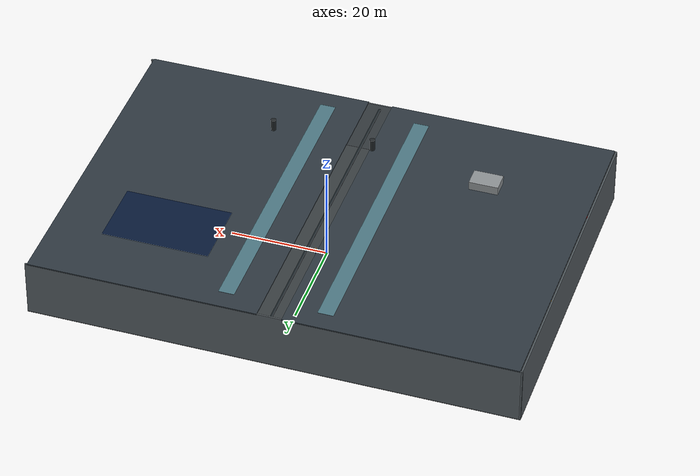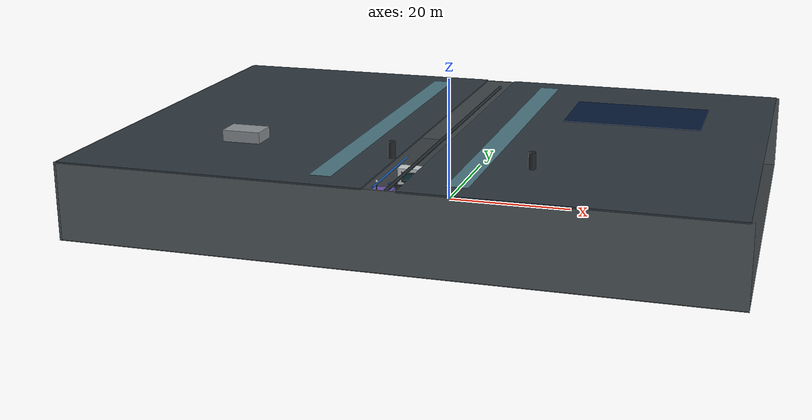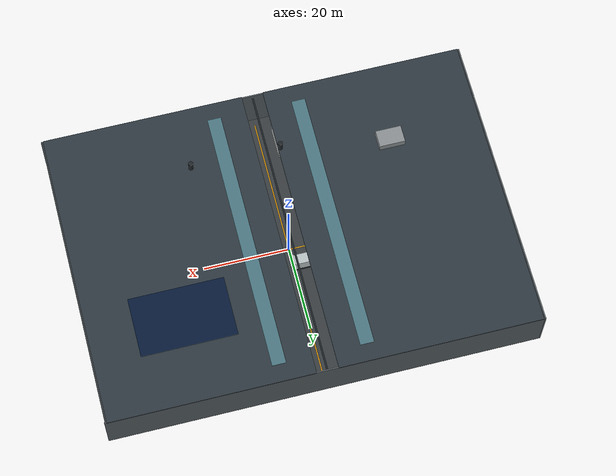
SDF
<sdf version="1.9">
 <world name="factory_floor">
  <model name="factory_floor">
   <static>true</static>
   <link name="floor">
    <collision name="collision"><geometry><box><size>100 70 0.1</size></box></geometry></collision>
    <visual name="visual">
     <geometry><box><size>100 70 0.1</size></box></geometry>
     <material><diffuse>0.22 0.24 0.25 1</diffuse></material>
    </visual>
    <visual name="main_aisle_x">
     <pose>0 0 .06 0 0 0</pose>
     <geometry><box><size>96 .26 .02</size></box></geometry>
     <material><diffuse>.95 .65 .04 1</diffuse><emissive>.15 .1 0 1</emissive></material>
    </visual>
    <visual name="main_aisle_y">
     <pose>0 0 .06 0 0 0</pose>
     <geometry><box><size>.26 66 .02</size></box></geometry>
     <material><diffuse>.95 .65 .04 1</diffuse></material>
    </visual>
    <visual name="logistics_lane">
     <pose>-30 0 .06 0 0 0</pose>
     <geometry><box><size>4 64 .02</size></box></geometry>
     <material><diffuse>.85 .85 .77 1</diffuse></material>
    </visual>
   </link>
  </model>
  <model name="hall_walls">
   <static>true</static>
   <link name="walls">
    <visual name="north">
     <pose>0 34.8 6 0 0 0</pose>
     <geometry><box><size>100 .3 12</size></box></geometry>
     <material><diffuse>.33 .36 .38 1</diffuse></material>
    </visual>
    <visual name="west">
     <pose>-49.8 0 6 0 0 0</pose>
     <geometry><box><size>.3 70 12</size></box></geometry>
     <material><diffuse>.33 .36 .38 1</diffuse></material>
    </visual>
    <visual name="south">
     <pose>0 -34.8 6 0 0 0</pose>
     <geometry><box><size>100 .3 12</size></box></geometry>
     <material><diffuse>.33 .36 .38 1</diffuse></material>
    </visual>
   </link>
  </model>
  <model name="roof_trusses">
   <static>true</static>
   <link name="trusses">
    <visual name="beam1">
     <pose>-36 0 11 0 0 0</pose>
     <geometry><box><size>.4 69 .4</size></box></geometry>
     <material><diffuse>.1 .13 .15 1</diffuse></material>
    </visual>
    <visual name="beam2">
     <pose>-18 0 11 0 0 0</pose>
     <geometry><box><size>.4 69 .4</size></box></geometry>
     <material><diffuse>.1 .13 .15 1</diffuse></material>
    </visual>
    <visual name="beam3">
     <pose>0 0 11 0 0 0</pose>
     <geometry><box><size>.4 69 .4</size></box></geometry>
     <material><diffuse>.1 .13 .15 1</diffuse></material>
    </visual>
    <visual name="beam4">
     <pose>18 0 11 0 0 0</pose>
     <geometry><box><size>.4 69 .4</size></box></geometry>
     <material><diffuse>.1 .13 .15 1</diffuse></material>
    </visual>
    <visual name="beam5">
     <pose>36 0 11 0 0 0</pose>
     <geometry><box><size>.4 69 .4</size></box></geometry>
     <material><diffuse>.1 .13 .15 1</diffuse></material>
    </visual>
   </link>
  </model>
  <model name="factory_roof">
   <static>true</static>
   <link name="roof">
    <visual name="roof_west">
     <pose>-26 0 12 0 0 0</pose>
     <geometry><box><size>47 70 .25</size></box></geometry>
     <material><diffuse>.18 .22 .25 1</diffuse></material>
    </visual>
    <visual name="roof_east">
     <pose>26 0 12 0 0 0</pose>
     <geometry><box><size>47 70 .25</size></box></geometry>
     <material><diffuse>.18 .22 .25 1</diffuse></material>
    </visual>
    <visual name="skylight1">
     <pose>-10 0 12.16 0 0 0</pose>
     <geometry><box><size>3.2 62 .07</size></box></geometry>
     <material><diffuse>.45 .72 .78 .55</diffuse><emissive>.06 .1 .12 1</emissive></material>
    </visual>
    <visual name="skylight2">
     <pose>10 0 12.16 0 0 0</pose>
     <geometry><box><size>3.2 62 .07</size></box></geometry>
     <material><diffuse>.45 .72 .78 .55</diffuse><emissive>.06 .1 .12 1</emissive></material>
    </visual>
    <visual name="solar_array">
     <pose>28 15 12.25 0 0 0</pose>
     <geometry><box><size>22 14 .08</size></box></geometry>
     <material><diffuse>.03 .1 .22 1</diffuse><emissive>.01 .03 .06 1</emissive></material>
    </visual>
    <visual name="roof_hvac">
     <pose>-28 -16 13 0 0 0</pose>
     <geometry><box><size>6 4 1.8</size></box></geometry>
     <material><diffuse>.55 .57 .58 1</diffuse></material>
    </visual>
    <visual name="exhaust_a">
     <pose>-3 -20 13.5 0 0 0</pose>
     <geometry><cylinder><radius>.55</radius><length>2.5</length></cylinder></geometry>
     <material><diffuse>.13 .15 .16 1</diffuse></material>
    </visual>
    <visual name="exhaust_b">
     <pose>18 -20 13.5 0 0 0</pose>
     <geometry><cylinder><radius>.55</radius><length>2.5</length></cylinder></geometry>
     <material><diffuse>.13 .15 .16 1</diffuse></material>
    </visual>
   </link>
  </model>
  <model name="utility_pipes">
   <static>true</static>
   <link name="pipes">
    <visual name="blue_pipe">
     <pose>-10 0 3.8 1.5708 0 0</pose>
     <geometry><cylinder><radius>.16</radius><length>18</length></cylinder></geometry>
     <material><diffuse>.08 .35 .7 1</diffuse></material>
    </visual>
    <visual name="red_pipe">
     <pose>-11 0 4.35 1.5708 0 0</pose>
     <geometry><cylinder><radius>.13</radius><length>18</length></cylinder></geometry>
     <material><diffuse>.8 .12 .08 1</diffuse></material>
    </visual>
   </link>
  </model>
  <model name="warning_beacon">
   <static>true</static>
   <pose>-10 -7 2.5 0 0 0</pose>
   <link name="beacon">
    <visual name="post">
     <geometry><cylinder><radius>.08</radius><length>3.5</length></cylinder></geometry>
     <material><diffuse>.2 .2 .2 1</diffuse></material>
    </visual>
    <visual name="light">
     <pose>0 0 1.7 0 0 0</pose>
     <geometry><sphere><radius>.24</radius></sphere></geometry>
     <material><emissive>1 .05 .01 1</emissive></material>
    </visual>
   </link>
  </model>
  <model name="raw_material_warehouse">
   <static>true</static>
   <pose>-35 18 0 0 0 0</pose>
   <link name="racks">
    <visual name="rack_a">
     <pose>0 -8 3 0 0 0</pose>
     <geometry><box><size>4 .6 6</size></box></geometry>
     <material><diffuse>.1 .32 .64 1</diffuse></material>
    </visual>
    <visual name="rack_b">
     <pose>0 0 3 0 0 0</pose>
     <geometry><box><size>4 .6 6</size></box></geometry>
     <material><diffuse>.1 .32 .64 1</diffuse></material>
    </visual>
    <visual name="rack_c">
     <pose>0 8 3 0 0 0</pose>
     <geometry><box><size>4 .6 6</size></box></geometry>
     <material><diffuse>.1 .32 .64 1</diffuse></material>
    </visual>
    <visual name="rack_d">
     <pose>8 -8 3 0 0 0</pose>
     <geometry><box><size>4 .6 6</size></box></geometry>
     <material><diffuse>.1 .32 .64 1</diffuse></material>
    </visual>
    <visual name="rack_e">
     <pose>8 0 3 0 0 0</pose>
     <geometry><box><size>4 .6 6</size></box></geometry>
     <material><diffuse>.1 .32 .64 1</diffuse></material>
    </visual>
    <visual name="rack_f">
     <pose>8 8 3 0 0 0</pose>
     <geometry><box><size>4 .6 6</size></box></geometry>
     <material><diffuse>.1 .32 .64 1</diffuse></material>
    </visual>
    <visual name="pallet_a">
     <pose>3 -4 .25 0 0 0</pose>
     <geometry><box><size>1.2 1 .5</size></box></geometry>
     <material><diffuse>.47 .25 .08 1</diffuse></material>
    </visual>
    <visual name="pallet_b">
     <pose>3 4 .25 0 0 0</pose>
     <geometry><box><size>1.2 1 .5</size></box></geometry>
     <material><diffuse>.47 .25 .08 1</diffuse></material>
    </visual>
   </link>
  </model>
  <model name="electrical_panel_assembly">
   <static>true</static>
   <pose>-35 -19 0 0 0 0</pose>
   <link name="assembly">
    <visual name="bench1">
     <pose>0 0 1 0 0 0</pose>
     <geometry><box><size>7 2 2</size></box></geometry>
     <material><diffuse>.16 .18 .19 1</diffuse></material>
    </visual>
    <visual name="bench2">
     <pose>10 0 1 0 0 0</pose>
     <geometry><box><size>7 2 2</size></box></geometry>
     <material><diffuse>.16 .18 .19 1</diffuse></material>
    </visual>
    <visual name="panel1">
     <pose>-2 0 2.8 0 0 0</pose>
     <geometry><box><size>2.2 .3 2.8</size></box></geometry>
     <material><diffuse>.86 .86 .81 1</diffuse></material>
    </visual>
    <visual name="panel2">
     <pose>2 0 2.8 0 0 0</pose>
     <geometry><box><size>2.2 .3 2.8</size></box></geometry>
     <material><diffuse>.86 .86 .81 1</diffuse></material>
    </visual>
    <visual name="panel3">
     <pose>8 0 2.8 0 0 0</pose>
     <geometry><box><size>2.2 .3 2.8</size></box></geometry>
     <material><diffuse>.86 .86 .81 1</diffuse></material>
    </visual>
    <visual name="panel4">
     <pose>12 0 2.8 0 0 0</pose>
     <geometry><box><size>2.2 .3 2.8</size></box></geometry>
     <material><diffuse>.86 .86 .81 1</diffuse></material>
    </visual>
    <visual name="test_light">
     <pose>5 -1.2 3.3 0 0 0</pose>
     <geometry><sphere><radius>.18</radius></sphere></geometry>
     <material><emissive>.05 .9 .25 1</emissive></material>
    </visual>
   </link>
  </model>
  <model name="electrical_control_room">
   <static>true</static>
   <pose>-11 -27 0 0 0 0</pose>
   <link name="room">
    <visual name="shell">
     <pose>0 0 2.5 0 0 0</pose>
     <geometry><box><size>15 7 5</size></box></geometry>
     <material><diffuse>.79 .81 .8 1</diffuse></material>
    </visual>
    <visual name="window">
     <pose>0 -3.53 3 0 0 0</pose>
     <geometry><box><size>10 .03 2.2</size></box></geometry>
     <material><emissive>.03 .25 .35 1</emissive></material>
    </visual>
    <visual name="display_wall">
     <pose>0 -3.57 3 0 0 0</pose>
     <geometry><box><size>5 .02 1.2</size></box></geometry>
     <material><emissive>.02 .62 .55 1</emissive></material>
    </visual>
    <visual name="switchgear">
     <pose>5 0 1.8 0 0 0</pose>
     <geometry><box><size>2.4 1 3.6</size></box></geometry>
     <material><diffuse>.2 .24 .26 1</diffuse></material>
    </visual>
   </link>
  </model>
  <model name="fire_safety">
   <static>true</static>
   <link name="system">
    <visual name="pipe_a">
     <pose>-15 0 9.6 1.5708 0 0</pose>
     <geometry><cylinder><radius>.11</radius><length>62</length></cylinder></geometry>
     <material><diffuse>.75 .04 .03 1</diffuse></material>
    </visual>
    <visual name="pipe_b">
     <pose>15 0 9.6 1.5708 0 0</pose>
     <geometry><cylinder><radius>.11</radius><length>62</length></cylinder></geometry>
     <material><diffuse>.75 .04 .03 1</diffuse></material>
    </visual>
    <visual name="cabinet_a">
     <pose>-46 -27 1.2 0 0 0</pose>
     <geometry><box><size>1 .35 2.4</size></box></geometry>
     <material><diffuse>.8 .05 .03 1</diffuse></material>
    </visual>
    <visual name="cabinet_b">
     <pose>38 -27 1.2 0 0 0</pose>
     <geometry><box><size>1 .35 2.4</size></box></geometry>
     <material><diffuse>.8 .05 .03 1</diffuse></material>
    </visual>
   </link>
  </model>
  <model name="CNC_01">
   <static>true</static>
   <pose>-8 4 0 0 0 0</pose>
   <link name="machine">
    <visual name="base">
     <pose>0 0 .35 0 0 0</pose>
     <geometry><box><size>4.4 3 .7</size></box></geometry>
     <material><diffuse>.16 .18 .19 1</diffuse></material>
    </visual>
    <visual name="enclosure">
     <pose>0 .25 2 0 0 0</pose>
     <geometry><box><size>3.7 2.4 3</size></box></geometry>
     <material><diffuse>.79 .82 .82 1</diffuse></material>
    </visual>
    <visual name="operator_door">
     <pose>0 -0.97 2.05 0 0 0</pose>
     <geometry><box><size>2.4 .05 1.8</size></box></geometry>
     <material><diffuse>.1 .13 .14 1</diffuse></material>
    </visual>
    <visual name="door_window">
     <pose>0 -1.01 2.15 0 0 0</pose>
     <geometry><box><size>1.6 .02 1.1</size></box></geometry>
     <material><emissive>.03 .26 .32 1</emissive><diffuse>.08 .24 .28 1</diffuse></material>
    </visual>
    <visual name="tool_magazine">
     <pose>1.95 .7 1.7 0 0 0</pose>
     <geometry><cylinder><radius>.65</radius><length>1.8</length></cylinder></geometry>
     <material><diffuse>.12 .15 .16 1</diffuse></material>
    </visual>
    <visual name="chip_conveyor">
     <pose>-2.9 -.2 .35 0 0 0</pose>
     <geometry><box><size>1.5 .7 .5</size></box></geometry>
     <material><diffuse>.12 .27 .48 1</diffuse></material>
    </visual>
    <visual name="pendant_arm">
     <pose>2 -1.2 1.4 0 0 .35</pose>
     <geometry><box><size>.08 .08 2.4</size></box></geometry>
     <material><diffuse>.12 .12 .12 1</diffuse></material>
    </visual>
    <visual name="pendant">
     <pose>2 -1.25 2.2 0 .25 0</pose>
     <geometry><box><size>.45 .2 .7</size></box></geometry>
     <material><diffuse>.82 .82 .78 1</diffuse></material>
    </visual>
    <visual name="screen">
     <pose>2 -1.37 2.25 0 .25 0</pose>
     <geometry><box><size>.28 .02 .27</size></box></geometry>
     <material><emissive>.02 .5 .65 1</emissive></material>
    </visual>
   </link>
  </model>
  <model name="CNC_02">
   <static>true</static>
   <pose>-2 4 0 0 0 0</pose>
   <link name="machine">
    <visual name="base">
     <pose>0 0 .35 0 0 0</pose>
     <geometry><box><size>4.4 3 .7</size></box></geometry>
     <material><diffuse>.16 .18 .19 1</diffuse></material>
    </visual>
    <visual name="enclosure">
     <pose>0 .25 2 0 0 0</pose>
     <geometry><box><size>3.7 2.4 3</size></box></geometry>
     <material><diffuse>.74 .77 .78 1</diffuse></material>
    </visual>
    <visual name="operator_door">
     <pose>0 -0.97 2.05 0 0 0</pose>
     <geometry><box><size>2.4 .05 1.8</size></box></geometry>
     <material><diffuse>.1 .13 .14 1</diffuse></material>
    </visual>
    <visual name="door_window">
     <pose>0 -1.01 2.15 0 0 0</pose>
     <geometry><box><size>1.6 .02 1.1</size></box></geometry>
     <material><emissive>.03 .26 .32 1</emissive></material>
    </visual>
    <visual name="tool_magazine">
     <pose>1.95 .7 1.7 0 0 0</pose>
     <geometry><cylinder><radius>.65</radius><length>1.8</length></cylinder></geometry>
     <material><diffuse>.12 .15 .16 1</diffuse></material>
    </visual>
    <visual name="chip_conveyor">
     <pose>-2.9 -.2 .35 0 0 0</pose>
     <geometry><box><size>1.5 .7 .5</size></box></geometry>
     <material><diffuse>.12 .27 .48 1</diffuse></material>
    </visual>
    <visual name="pendant">
     <pose>2 -1.25 2.2 0 .25 0</pose>
     <geometry><box><size>.45 .2 .7</size></box></geometry>
     <material><diffuse>.82 .82 .78 1</diffuse></material>
    </visual>
    <visual name="screen">
     <pose>2 -1.37 2.25 0 .25 0</pose>
     <geometry><box><size>.28 .02 .27</size></box></geometry>
     <material><emissive>.02 .5 .65 1</emissive></material>
    </visual>
   </link>
  </model>
  <model name="HVAC_01">
   <static>true</static>
   <pose>-10 -4 1 0 0 0</pose>
   <link name="link">
    <visual name="body">
     <geometry><box><size>3.5 2.5 2</size></box></geometry>
     <material><diffuse>.42 .33 .7 1</diffuse></material>
    </visual>
    <visual name="vent1">
     <pose>0 -1.27 .5 0 0 0</pose>
     <geometry><box><size>2.7 .03 .7</size></box></geometry>
     <material><diffuse>.08 .1 .11 1</diffuse></material>
    </visual>
   </link>
  </model>
  <model name="factory_workforce">
   <static>true</static>
   <link name="operators">
    <visual name="worker_01_legs">
     <pose>-10 1 .48 0 0 0</pose>
     <geometry><box><size>.32 .22 .96</size></box></geometry>
     <material><diffuse>.06 .12 .24 1</diffuse></material>
    </visual>
    <visual name="worker_01_vest">
     <pose>-10 1 1.22 0 0 0</pose>
     <geometry><box><size>.48 .28 .52</size></box></geometry>
     <material><diffuse>1 .68 .02 1</diffuse></material>
    </visual>
    <visual name="worker_01_head">
     <pose>-10 1 1.62 0 0 0</pose>
     <geometry><sphere><radius>.17</radius></sphere></geometry>
     <material><diffuse>.66 .43 .27 1</diffuse></material>
    </visual>
    <visual name="worker_02_legs">
     <pose>-4 1 .48 0 0 0</pose>
     <geometry><box><size>.32 .22 .96</size></box></geometry>
     <material><diffuse>.06 .12 .24 1</diffuse></material>
    </visual>
    <visual name="worker_02_vest">
     <pose>-4 1 1.22 0 0 0</pose>
     <geometry><box><size>.48 .28 .52</size></box></geometry>
     <material><diffuse>1 .68 .02 1</diffuse></material>
    </visual>
    <visual name="worker_02_head">
     <pose>-4 1 1.62 0 0 0</pose>
     <geometry><sphere><radius>.17</radius></sphere></geometry>
     <material><diffuse>.55 .34 .21 1</diffuse></material>
    </visual>
    <visual name="worker_03_legs">
     <pose>2 1 .48 0 0 0</pose>
     <geometry><box><size>.32 .22 .96</size></box></geometry>
     <material><diffuse>.06 .12 .24 1</diffuse></material>
    </visual>
    <visual name="worker_03_vest">
     <pose>2 1 1.22 0 0 0</pose>
     <geometry><box><size>.48 .28 .52</size></box></geometry>
     <material><diffuse>1 .68 .02 1</diffuse></material>
    </visual>
    <visual name="worker_03_head">
     <pose>2 1 1.62 0 0 0</pose>
     <geometry><sphere><radius>.17</radius></sphere></geometry>
     <material><diffuse>.73 .49 .31 1</diffuse></material>
    </visual>
    <visual name="worker_04_legs">
     <pose>9 -2 .48 0 0 0</pose>
     <geometry><box><size>.32 .22 .96</size></box></geometry>
     <material><diffuse>.06 .12 .24 1</diffuse></material>
    </visual>
    <visual name="worker_04_vest">
     <pose>9 -2 1.22 0 0 0</pose>
     <geometry><box><size>.48 .28 .52</size></box></geometry>
     <material><diffuse>1 .68 .02 1</diffuse></material>
    </visual>
    <visual name="worker_04_head">
     <pose>9 -2 1.62 0 0 0</pose>
     <geometry><sphere><radius>.17</radius></sphere></geometry>
     <material><diffuse>.62 .39 .24 1</diffuse></material>
    </visual>
    <visual name="worker_05_legs">
     <pose>-31 -16 .48 0 0 0</pose>
     <geometry><box><size>.32 .22 .96</size></box></geometry>
     <material><diffuse>.06 .12 .24 1</diffuse></material>
    </visual>
    <visual name="worker_05_vest">
     <pose>-31 -16 1.22 0 0 0</pose>
     <geometry><box><size>.48 .28 .52</size></box></geometry>
     <material><diffuse>1 .68 .02 1</diffuse></material>
    </visual>
    <visual name="worker_05_head">
     <pose>-31 -16 1.62 0 0 0</pose>
     <geometry><sphere><radius>.17</radius></sphere></geometry>
     <material><diffuse>.70 .46 .29 1</diffuse></material>
    </visual>
    <visual name="worker_06_legs">
     <pose>-24 -20 .48 0 0 0</pose>
     <geometry><box><size>.32 .22 .96</size></box></geometry>
     <material><diffuse>.06 .12 .24 1</diffuse></material>
    </visual>
    <visual name="worker_06_vest">
     <pose>-24 -20 1.22 0 0 0</pose>
     <geometry><box><size>.48 .28 .52</size></box></geometry>
     <material><diffuse>1 .68 .02 1</diffuse></material>
    </visual>
    <visual name="worker_06_head">
     <pose>-24 -20 1.62 0 0 0</pose>
     <geometry><sphere><radius>.17</radius></sphere></geometry>
     <material><diffuse>.59 .37 .23 1</diffuse></material>
    </visual>
    <visual name="worker_07_legs">
     <pose>21 17 .48 0 0 0</pose>
     <geometry><box><size>.32 .22 .96</size></box></geometry>
     <material><diffuse>.06 .12 .24 1</diffuse></material>
    </visual>
    <visual name="worker_07_vest">
     <pose>21 17 1.22 0 0 0</pose>
     <geometry><box><size>.48 .28 .52</size></box></geometry>
     <material><diffuse>1 .68 .02 1</diffuse></material>
    </visual>
    <visual name="worker_07_head">
     <pose>21 17 1.62 0 0 0</pose>
     <geometry><sphere><radius>.17</radius></sphere></geometry>
     <material><diffuse>.68 .44 .27 1</diffuse></material>
    </visual>
    <visual name="worker_08_legs">
     <pose>30 20 .48 0 0 0</pose>
     <geometry><box><size>.32 .22 .96</size></box></geometry>
     <material><diffuse>.06 .12 .24 1</diffuse></material>
    </visual>
    <visual name="worker_08_vest">
     <pose>30 20 1.22 0 0 0</pose>
     <geometry><box><size>.48 .28 .52</size></box></geometry>
     <material><diffuse>1 .68 .02 1</diffuse></material>
    </visual>
    <visual name="worker_08_head">
     <pose>30 20 1.62 0 0 0</pose>
     <geometry><sphere><radius>.17</radius></sphere></geometry>
     <material><diffuse>.76 .52 .34 1</diffuse></material>
    </visual>
    <visual name="worker_09_legs">
     <pose>21 -18 .48 0 0 0</pose>
     <geometry><box><size>.32 .22 .96</size></box></geometry>
     <material><diffuse>.06 .12 .24 1</diffuse></material>
    </visual>
    <visual name="worker_09_vest">
     <pose>21 -18 1.22 0 0 0</pose>
     <geometry><box><size>.48 .28 .52</size></box></geometry>
     <material><diffuse>1 .68 .02 1</diffuse></material>
    </visual>
    <visual name="worker_09_head">
     <pose>21 -18 1.62 0 0 0</pose>
     <geometry><sphere><radius>.17</radius></sphere></geometry>
     <material><diffuse>.63 .40 .25 1</diffuse></material>
    </visual>
    <visual name="worker_10_legs">
     <pose>40 4 .98 0 0 0</pose>
     <geometry><box><size>.32 .22 .96</size></box></geometry>
     <material><diffuse>.06 .12 .24 1</diffuse></material>
    </visual>
    <visual name="worker_10_vest">
     <pose>40 4 1.72 0 0 0</pose>
     <geometry><box><size>.48 .28 .52</size></box></geometry>
     <material><diffuse>1 .68 .02 1</diffuse></material>
    </visual>
    <visual name="worker_10_head">
     <pose>40 4 2.12 0 0 0</pose>
     <geometry><sphere><radius>.17</radius></sphere></geometry>
     <material><diffuse>.72 .48 .30 1</diffuse></material>
    </visual>
   </link>
  </model>
 </world>
</sdf>
